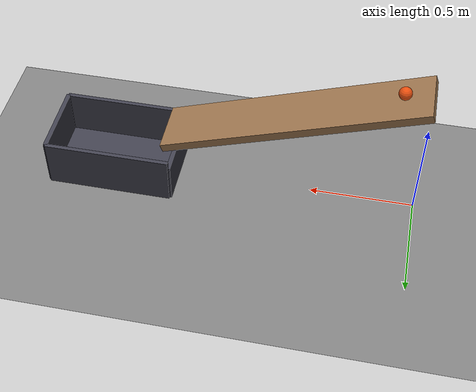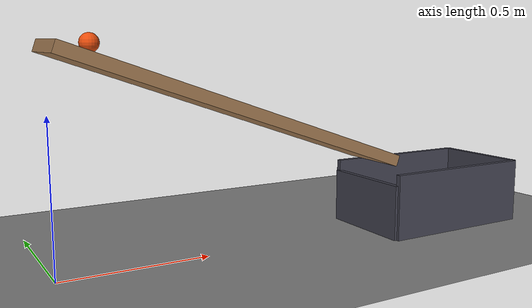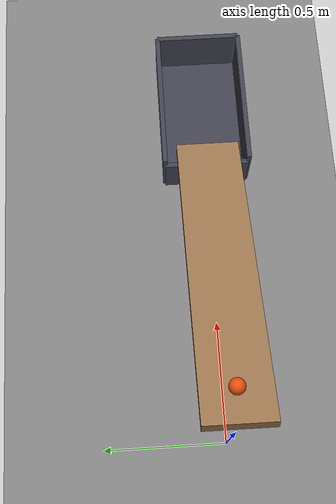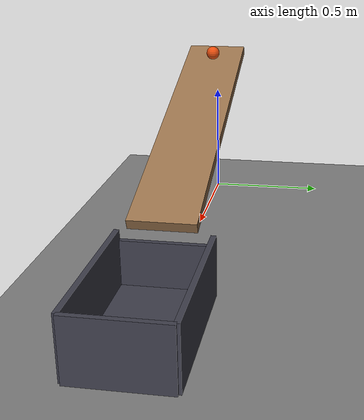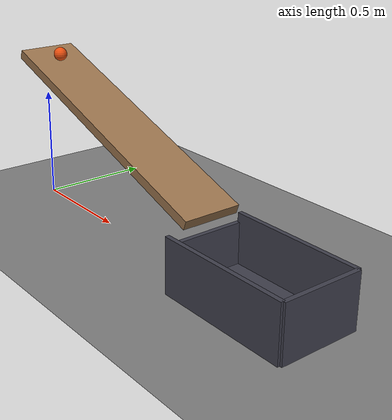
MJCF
<mujoco model="ball_rolls_into_a_cup">
  <compiler angle="radian"/>
  <option timestep="0.002"/>
  <worldbody>
    <geom name="floor" type="plane" size="4 4 0.1" friction="0.8 0.005 0.002"/>
    <body name="ramp">
      <geom name="ramp" type="box" pos="0.6 0 0.49" size="0.635689 0.13 0.02" euler="0 0.336675 0" friction="0.8 0.005 0.001" solref="0.01 1" rgba="0.6 0.45 0.3 1"/>
    </body>
    <body name="cup">
      <geom name="cup_base" type="box" pos="1.46 0 0.01" size="0.3 0.18 0.01" friction="1 0.02 0.025" solref="0.01 1" rgba="0.25 0.25 0.3 1"/>
      <geom name="cup_near_wall" type="box" pos="1.16 0 0.1" size="0.01 0.18 0.1" friction="1 0.02 0.025" solref="0.01 1" rgba="0.25 0.25 0.3 1"/>
      <geom name="cup_far_wall" type="box" pos="1.76 0 0.12" size="0.01 0.18 0.12" friction="1 0.02 0.025" solref="0.01 1" rgba="0.25 0.25 0.3 1"/>
      <geom name="cup_left_wall" type="box" pos="1.46 0.18 0.12" size="0.3 0.01 0.12" friction="1 0.02 0.025" solref="0.01 1" rgba="0.25 0.25 0.3 1"/>
      <geom name="cup_right_wall" type="box" pos="1.46 -0.18 0.12" size="0.3 0.01 0.12" friction="1 0.02 0.025" solref="0.01 1" rgba="0.25 0.25 0.3 1"/>
    </body>
    <body name="ball" pos="0.129781 0 0.707551">
      <freejoint/>
      <geom name="ball" type="sphere" pos="0 0 0" size="0.03" mass="0.12" condim="6" friction="0.8 0.005 0.001" solref="0.01 1" rgba="0.9 0.3 0.05 1"/>
    </body>
  </worldbody>
  <keyframe>
    <key name="start" qpos="0.129781 0 0.707551 1 0 0 0" qvel="0 0 0 0 0 0"/>
  </keyframe>
</mujoco>
